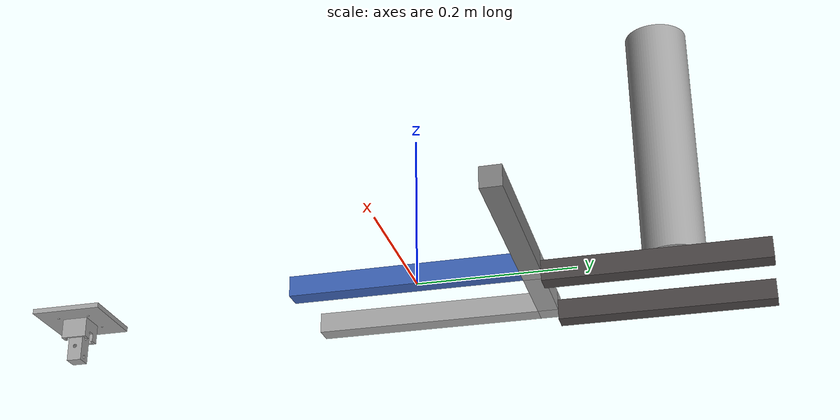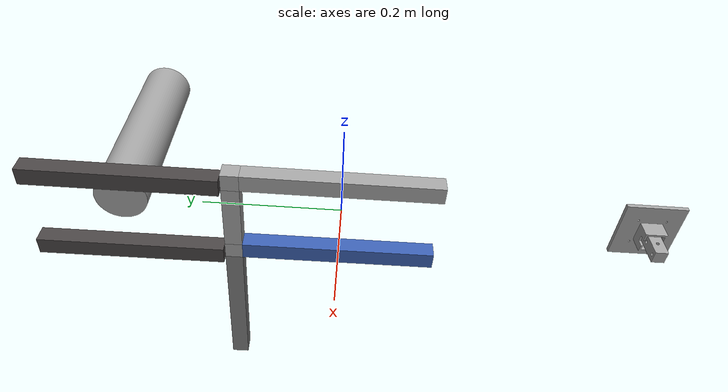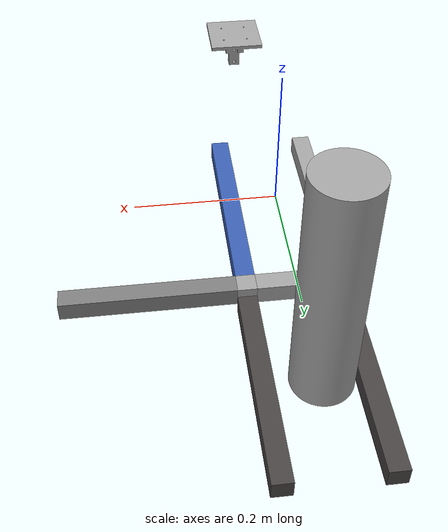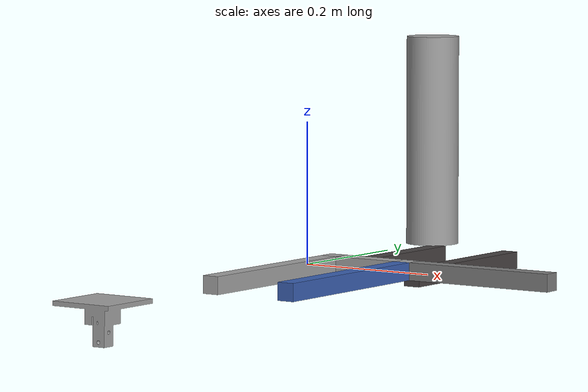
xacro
<?xml version="1.0" ?>
<!-- Generated using onshape-to-robot -->
<!-- Onshape https://cad.onshape.com/documents/bd8c1cbb3cbd66454183450f/w/dfd94c9f83ff0fc6c8761109/e/c765fc0d53504544c054bc0a -->
<robot xmlns:xacro="http://www.ros.org/wiki/xacro" name="igvc">
  <!-- Link part_1 -->
  <link name="part_1">
    <inertial>
      <origin xyz="0 0 0" rpy="0 0 0"/>
      <mass value="1e-09"/>
      <inertia ixx="1e-09" ixy="0" ixz="0" iyy="1e-09" iyz="0" izz="1e-09"/>
    </inertial>
    <!-- Part part_5 -->
    <visual>
      <origin xyz="0 -0.4572 -0.00635" rpy="0 -0 0"/>
      <geometry>
        <mesh filename="package://assets/part_5.stl"/>
      </geometry>
      <material name="part_5_material">
        <color rgba="0.647059 0.647059 0.647059 1"/>
      </material>
    </visual>
    <collision>
      <origin xyz="0 -0.4572 -0.00635" rpy="0 -0 0"/>
      <geometry>
        <mesh filename="package://assets/part_5.stl"/>
      </geometry>
    </collision>
    <!-- Part part_4 -->
    <visual>
      <origin xyz="0 -0.4572 -0.00635" rpy="0 -0 0"/>
      <geometry>
        <mesh filename="package://assets/part_4.stl"/>
      </geometry>
      <material name="part_4_material">
        <color rgba="0.647059 0.647059 0.647059 1"/>
      </material>
    </visual>
    <collision>
      <origin xyz="0 -0.4572 -0.00635" rpy="0 -0 0"/>
      <geometry>
        <mesh filename="package://assets/part_4.stl"/>
      </geometry>
    </collision>
    <!-- Part part_8 -->
    <visual>
      <origin xyz="0 -0.4572 -0.00635" rpy="0 -0 0"/>
      <geometry>
        <mesh filename="package://assets/part_8.stl"/>
      </geometry>
      <material name="part_8_material">
        <color rgba="0.647059 0.647059 0.647059 1"/>
      </material>
    </visual>
    <collision>
      <origin xyz="0 -0.4572 -0.00635" rpy="0 -0 0"/>
      <geometry>
        <mesh filename="package://assets/part_8.stl"/>
      </geometry>
    </collision>
    <!-- Part part_2 -->
    <visual>
      <origin xyz="0 -0.4572 -0.00635" rpy="0 -0 0"/>
      <geometry>
        <mesh filename="package://assets/part_2.stl"/>
      </geometry>
      <material name="part_2_material">
        <color rgba="0.647059 0.647059 0.647059 1"/>
      </material>
    </visual>
    <collision>
      <origin xyz="0 -0.4572 -0.00635" rpy="0 -0 0"/>
      <geometry>
        <mesh filename="package://assets/part_2.stl"/>
      </geometry>
    </collision>
    <!-- Part part_6 -->
    <visual>
      <origin xyz="0 -0.4572 -0.00635" rpy="0 -0 0"/>
      <geometry>
        <mesh filename="package://assets/part_6.stl"/>
      </geometry>
      <material name="part_6_material">
        <color rgba="0.231373 0.380392 0.705882 1"/>
      </material>
    </visual>
    <collision>
      <origin xyz="0 -0.4572 -0.00635" rpy="0 -0 0"/>
      <geometry>
        <mesh filename="package://assets/part_6.stl"/>
      </geometry>
    </collision>
    <!-- Part part_3 -->
    <visual>
      <origin xyz="0 -0.4572 -0.00635" rpy="0 -0 0"/>
      <geometry>
        <mesh filename="package://assets/part_3.stl"/>
      </geometry>
      <material name="part_3_material">
        <color rgba="0.647059 0.647059 0.647059 1"/>
      </material>
    </visual>
    <collision>
      <origin xyz="0 -0.4572 -0.00635" rpy="0 -0 0"/>
      <geometry>
        <mesh filename="package://assets/part_3.stl"/>
      </geometry>
    </collision>
    <!-- Part part_7 -->
    <visual>
      <origin xyz="0 -0.4572 -0.00635" rpy="0 -0 0"/>
      <geometry>
        <mesh filename="package://assets/part_7.stl"/>
      </geometry>
      <material name="part_7_material">
        <color rgba="0.498039 0.498039 0.498039 1"/>
      </material>
    </visual>
    <collision>
      <origin xyz="0 -0.4572 -0.00635" rpy="0 -0 0"/>
      <geometry>
        <mesh filename="package://assets/part_7.stl"/>
      </geometry>
    </collision>
    <!-- Part part_1 -->
    <visual>
      <origin xyz="0 -0.4572 -0.00635" rpy="0 -0 0"/>
      <geometry>
        <mesh filename="package://assets/part_1.stl"/>
      </geometry>
      <material name="part_1_material">
        <color rgba="0.647059 0.647059 0.647059 1"/>
      </material>
    </visual>
    <collision>
      <origin xyz="0 -0.4572 -0.00635" rpy="0 -0 0"/>
      <geometry>
        <mesh filename="package://assets/part_1.stl"/>
      </geometry>
    </collision>
  </link>
  <!-- Link part_10 -->
  <link name="part_10">
    <inertial>
      <origin xyz="0 0 0" rpy="0 0 0"/>
      <mass value="1e-09"/>
      <inertia ixx="1e-09" ixy="0" ixz="0" iyy="1e-09" iyz="0" izz="1e-09"/>
    </inertial>
    <!-- Part part_10 -->
    <visual>
      <origin xyz="-0.4572 -0 0.2159" rpy="-1.5708 -1.5708 0"/>
      <geometry>
        <mesh filename="package://assets/part_10.stl"/>
      </geometry>
      <material name="part_10_material">
        <color rgba="0.286275 0.266667 0.266667 1"/>
      </material>
    </visual>
    <collision>
      <origin xyz="-0.4572 -0 0.2159" rpy="-1.5708 -1.5708 0"/>
      <geometry>
        <mesh filename="package://assets/part_10.stl"/>
      </geometry>
    </collision>
  </link>
  <!-- Joint from part_1 to part_10 -->
  <joint name="wheel_L" type="continuous">
    <origin xyz="-0.2159 0 -0.01905" rpy="1.5708 -0 1.5708"/>
    <parent link="part_1"/>
    <child link="part_10"/>
    <axis xyz="0 0 1"/>
    <limit effort="10" velocity="10"/>
  </joint>
  <!-- Link part_9 -->
  <link name="part_9">
    <inertial>
      <origin xyz="0 0 0" rpy="0 0 0"/>
      <mass value="1e-09"/>
      <inertia ixx="1e-09" ixy="0" ixz="0" iyy="1e-09" iyz="0" izz="1e-09"/>
    </inertial>
    <!-- Part part_9 -->
    <visual>
      <origin xyz="-0.4572 0 0.2159" rpy="1.5708 1.5708 0"/>
      <geometry>
        <mesh filename="package://assets/part_9.stl"/>
      </geometry>
      <material name="part_9_material">
        <color rgba="0.286275 0.266667 0.266667 1"/>
      </material>
    </visual>
    <collision>
      <origin xyz="-0.4572 0 0.2159" rpy="1.5708 1.5708 0"/>
      <geometry>
        <mesh filename="package://assets/part_9.stl"/>
      </geometry>
    </collision>
  </link>
  <!-- Joint from part_1 to part_9 -->
  <joint name="wheel_R" type="continuous">
    <origin xyz="0.2159 0 -0.01905" rpy="-1.5708 -0 1.5708"/>
    <parent link="part_1"/>
    <child link="part_9"/>
    <axis xyz="0 0 1"/>
    <limit effort="10" velocity="10"/>
  </joint>
</robot>
